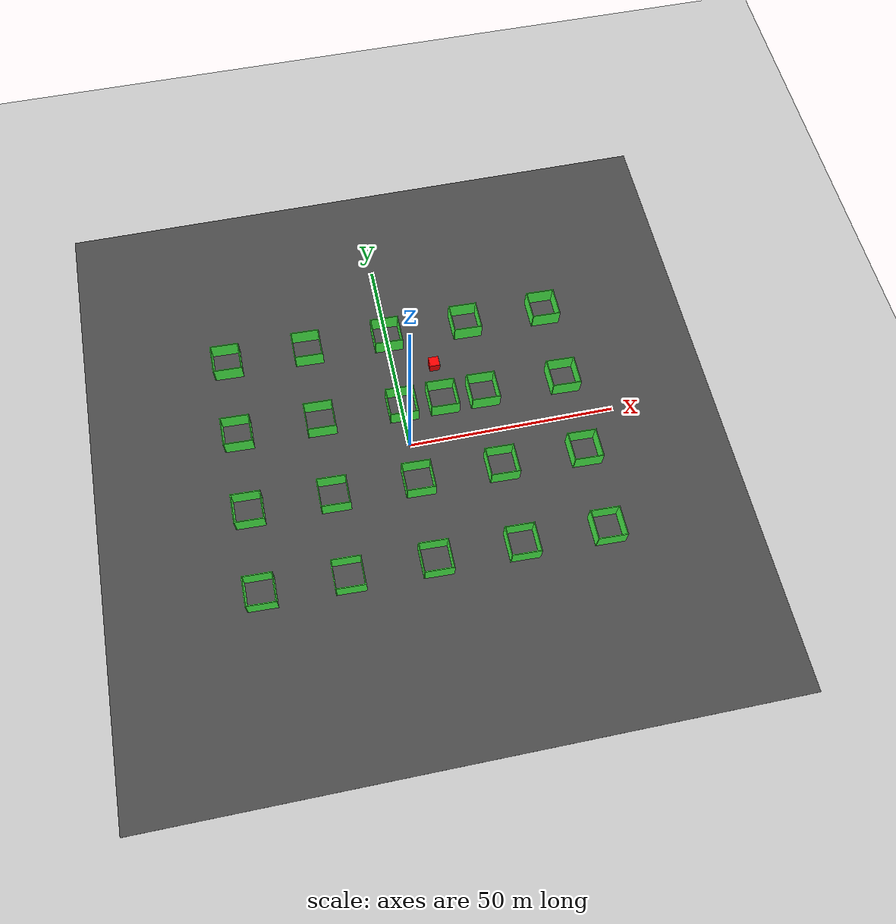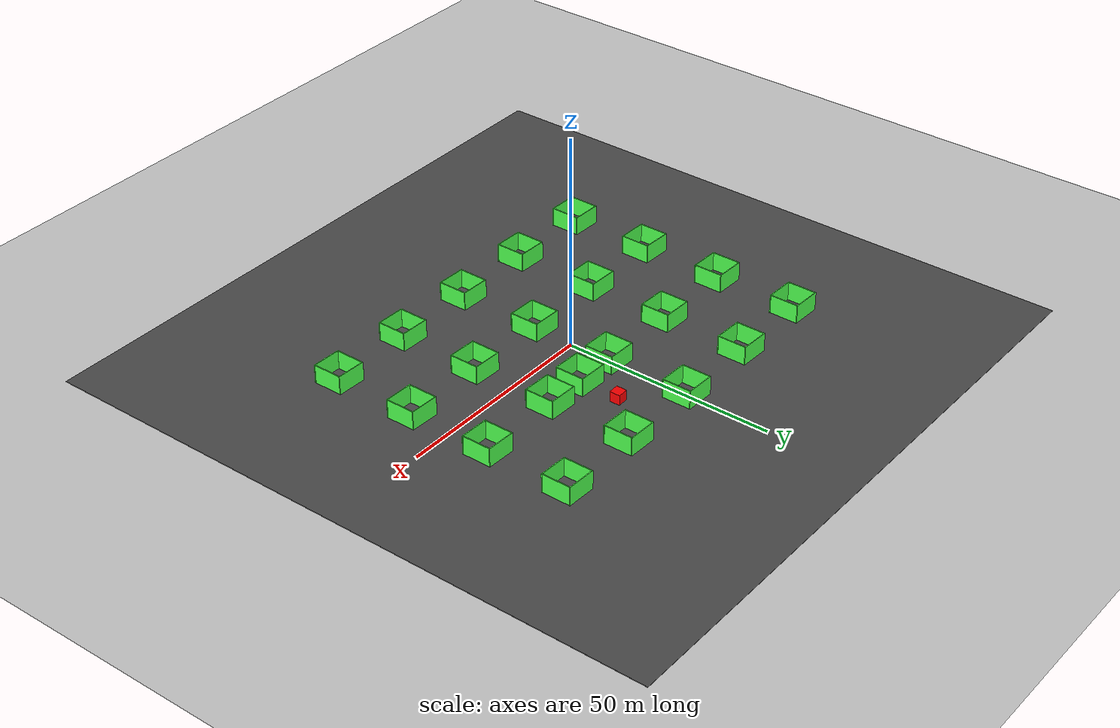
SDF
<?xml version="1.0"?>
<sdf version="1.9">
  <world name="default">
    <physics name="1ms" type="ignored">
      <max_step_size>0.001</max_step_size>
      <real_time_factor>1.0</real_time_factor>
      <real_time_update_rate>250</real_time_update_rate>
    </physics>

    <plugin filename="gz-sim-physics-system" name="gz::sim::systems::Physics"></plugin>
    <plugin filename="gz-sim-user-commands-system" name="gz::sim::systems::UserCommands"></plugin>
    <plugin filename="gz-sim-scene-broadcaster-system" name="gz::sim::systems::SceneBroadcaster"></plugin>

    <include>
      <uri>https://fuel.gazebosim.org/1.0/OpenRobotics/models/Ground Plane</uri>
    </include>

    <light type="directional" name="sun">
      <cast_shadows>true</cast_shadows>
      <pose>0 0 10 0 0 0</pose>
      <diffuse>0.8 0.8 0.8 1</diffuse>
      <specular>0.2 0.2 0.2 1</specular>
      <attenuation>
        <range>1000</range>
        <constant>0.9</constant>
        <linear>0.01</linear>
        <quadratic>0.001</quadratic>
      </attenuation>
      <direction>-0.5 0.1 -0.9</direction>
    </light>

    <model name='asphalt_plane'>
      <static>1</static>
      <link name='link'>
        <collision name='collision'>
          <geometry>
            <box>
              <size>150 150 0.1</size>
            </box>
          </geometry>
          <max_contacts>10</max_contacts>
          <surface>
            <contact>
              <ode/>
            </contact>
            <bounce/>
            <friction>
              <torsional>
                <ode/>
              </torsional>
              <ode/>
            </friction>
          </surface>
        </collision>
        <visual name='visual'>
          <cast_shadows>0</cast_shadows>
          <geometry>
            <box>
              <size>150 150 0.1</size>
            </box>
          </geometry>
          <material>
            <ambient>0.3 0.3 0.3 1</ambient>
            <diffuse>0.3 0.3 0.3 1</diffuse>
            <specular>0.1 0.1 0.1 1</specular>
          </material>
        </visual>
        <self_collide>0</self_collide>
        <enable_wind>0</enable_wind>
        <kinematic>0</kinematic>
      </link>
      <pose>0 0 0 0 -0 0</pose>
    </model>

    <!-- Manually placed walls instead of population (Gazebo Harmonic compatibility) -->
    <!-- Row 1 -->
    <model name='wall_0_0'>
      <pose>-40 -30 2.25 0 0 0</pose>
      <include>
        <uri>closed_green_wall</uri>
      </include>
      <static>true</static>
    </model>

    <model name='wall_0_1'>
      <pose>-20 -30 2.25 0 0 0</pose>
      <include>
        <uri>closed_green_wall</uri>
      </include>
      <static>true</static>
    </model>

    <model name='wall_0_2'>
      <pose>0 -30 2.25 0 0 0</pose>
      <include>
        <uri>closed_green_wall</uri>
      </include>
      <static>true</static>
    </model>

    <model name='wall_0_3'>
      <pose>20 -30 2.25 0 0 0</pose>
      <include>
        <uri>closed_green_wall</uri>
      </include>
      <static>true</static>
    </model>

    <model name='wall_0_4'>
      <pose>40 -30 2.25 0 0 0</pose>
      <include>
        <uri>closed_green_wall</uri>
      </include>
      <static>true</static>
    </model>

    <!-- Row 2 -->
    <model name='wall_1_0'>
      <pose>-40 -10 2.25 0 0 0</pose>
      <include>
        <uri>closed_green_wall</uri>
      </include>
      <static>true</static>
    </model>

    <model name='wall_1_1'>
      <pose>-20 -10 2.25 0 0 0</pose>
      <include>
        <uri>closed_green_wall</uri>
      </include>
      <static>true</static>
    </model>

    <model name='wall_1_2'>
      <pose>0 -10 2.25 0 0 0</pose>
      <include>
        <uri>closed_green_wall</uri>
      </include>
      <static>true</static>
    </model>

    <model name='wall_1_3'>
      <pose>20 -10 2.25 0 0 0</pose>
      <include>
        <uri>closed_green_wall</uri>
      </include>
      <static>true</static>
    </model>

    <model name='wall_1_4'>
      <pose>40 -10 2.25 0 0 0</pose>
      <include>
        <uri>closed_green_wall</uri>
      </include>
      <static>true</static>
    </model>

    <!-- Row 3 -->
    <model name='wall_2_0'>
      <pose>-40 10 2.25 0 0 0</pose>
      <include>
        <uri>closed_green_wall</uri>
      </include>
      <static>true</static>
    </model>

    <model name='wall_2_1'>
      <pose>-20 10 2.25 0 0 0</pose>
      <include>
        <uri>closed_green_wall</uri>
      </include>
      <static>true</static>
    </model>

    <model name='wall_2_2'>
      <pose>0 10 2.25 0 0 0</pose>
      <include>
        <uri>closed_green_wall</uri>
      </include>
      <static>true</static>
    </model>

    <model name='wall_2_X'>
      <pose>10 10 2.25 0 0 0</pose>
      <include>
        <uri>closed_green_wall</uri>
      </include>
      <static>true</static>
    </model>

    <model name='wall_2_3'>
      <pose>20 10 2.25 0 0 0</pose>
      <include>
        <uri>closed_green_wall</uri>
      </include>
      <static>true</static>
    </model>

    <model name='wall_2_4'>
      <pose>40 10 2.25 0 0 0</pose>
      <include>
        <uri>closed_green_wall</uri>
      </include>
      <static>true</static>
    </model>

    <!-- Row 4 -->
    <model name='wall_3_0'>
      <pose>-40 30 2.25 0 0 0</pose>
      <include>
        <uri>closed_green_wall</uri>
      </include>
      <static>true</static>
    </model>

    <model name='wall_3_1'>
      <pose>-20 30 2.25 0 0 0</pose>
      <include>
        <uri>closed_green_wall</uri>
      </include>
      <static>true</static>
    </model>

    <model name='wall_3_2'>
      <pose>0 30 2.25 0 0 0</pose>
      <include>
        <uri>closed_green_wall</uri>
      </include>
      <static>true</static>
    </model>

    <model name='wall_3_3'>
      <pose>20 30 2.25 0 0 0</pose>
      <include>
        <uri>closed_green_wall</uri>
      </include>
      <static>true</static>
    </model>

    <model name='wall_3_4'>
      <pose>40 30 2.25 0 0 0</pose>
      <include>
        <uri>closed_green_wall</uri>
      </include>
      <static>true</static>
    </model>

    <model name='box1'>
      <pose>10 20 1.25 0 0 0</pose> <!-- Bottom box positioned at half its height -->

      <link name='box1'>
        <visual name='visual'>
          <geometry>
            <box>
              <size>2.50 2.50 2.50</size>
            </box>
          </geometry>
          <material>
            <ambient>1 0 0 1</ambient>
            <diffuse>1 0 0 1</diffuse>
            <specular>1 0 0 1</specular>
          </material>
        </visual>
        <collision name='collision'>
          <geometry>
            <box>
              <size>2.50 2.50 2.50</size>
            </box>
          </geometry>
        </collision>
        <inertial>
          <mass>100.0</mass>
          <inertia>
            <ixx>266.67</ixx>
            <ixy>0</ixy>
            <ixz>0</ixz>
            <iyy>266.67</iyy>
            <iyz>0</iyz>
            <izz>266.67</izz>
          </inertia>
        </inertial>
      </link>
    </model>

    <gui fullscreen='0'>
      <camera name='user_camera'>
        <pose>0 0 80 0 1.57 0</pose>
        <view_controller>orbit</view_controller>
        <projection_type>perspective</projection_type>
      </camera>
    </gui>

  </world>
</sdf>

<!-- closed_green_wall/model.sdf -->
<sdf version='1.9'>
  <model name='closed_green_wall'>
    <link name='link_0'>
      <inertial>
        <mass>1</mass>
        <inertia>
          <ixx>0.166667</ixx>
          <ixy>0</ixy>
          <ixz>0</ixz>
          <iyy>0.166667</iyy>
          <iyz>0</iyz>
          <izz>0.166667</izz>
        </inertia>
        <pose>0 0 0 0 0 0</pose>
      </inertial>
      <pose>3.37098 -0.107634 0 0 0 0</pose>
      <gravity>1</gravity>
      <self_collide>0</self_collide>
      <kinematic>0</kinematic>
      <enable_wind>0</enable_wind>
      <visual name='visual'>
        <pose>0 0 0 0 0 0</pose>
        <geometry>
          <box>
            <size>0.2 7 4.5</size>
          </box>
        </geometry>
        <material>
          <ambient>0.3 1.0 0.3 1</ambient>
          <diffuse>0.3 1.0 0.3 1</diffuse>
          <specular>0.01 0.01 0.01 1</specular>
          <emissive>0 0 0 1</emissive>
        </material>
        <transparency>0</transparency>
        <cast_shadows>1</cast_shadows>
      </visual>
      <collision name='collision'>
        <laser_retro>0</laser_retro>
        <max_contacts>10</max_contacts>
        <pose>0 0 0 0 0 0</pose>
        <geometry>
          <box>
            <size>0.2 7 4.5</size>
          </box>
        </geometry>
        <surface>
          <friction>
            <ode>
              <mu>1</mu>
              <mu2>1</mu2>
              <fdir1>0 0 0</fdir1>
              <slip1>0</slip1>
              <slip2>0</slip2>
            </ode>
            <torsional>
              <coefficient>1</coefficient>
              <patch_radius>0</patch_radius>
              <surface_radius>0</surface_radius>
              <use_patch_radius>1</use_patch_radius>
              <ode>
                <slip>0</slip>
              </ode>
            </torsional>
          </friction>
          <bounce>
            <restitution_coefficient>0</restitution_coefficient>
            <threshold>1e+06</threshold>
          </bounce>
          <contact>
            <collide_without_contact>0</collide_without_contact>
            <collide_without_contact_bitmask>1</collide_without_contact_bitmask>
            <collide_bitmask>1</collide_bitmask>
            <ode>
              <soft_cfm>0</soft_cfm>
              <soft_erp>0.2</soft_erp>
              <kp>1e+13</kp>
              <kd>1</kd>
              <max_vel>0.01</max_vel>
              <min_depth>0</min_depth>
            </ode>
            <bullet>
              <split_impulse>1</split_impulse>
              <split_impulse_penetration_threshold>-0.01</split_impulse_penetration_threshold>
              <soft_cfm>0</soft_cfm>
              <soft_erp>0.2</soft_erp>
              <kp>1e+13</kp>
              <kd>1</kd>
            </bullet>
          </contact>
        </surface>
      </collision>
    </link>
    <link name='link_0_clone'>
      <inertial>
        <mass>1</mass>
        <inertia>
          <ixx>0.166667</ixx>
          <ixy>0</ixy>
          <ixz>0</ixz>
          <iyy>0.166667</iyy>
          <iyz>0</iyz>
          <izz>0.166667</izz>
        </inertia>
        <pose>0 0 0 0 0 0</pose>
      </inertial>
      <pose>0.024232 -3.42805 0 0 0 -1.59986</pose>
      <gravity>1</gravity>
      <self_collide>0</self_collide>
      <kinematic>0</kinematic>
      <enable_wind>0</enable_wind>
      <visual name='visual'>
        <pose>0 0 0 0 0 0</pose>
        <geometry>
          <box>
            <size>0.2 7 4.5</size>
          </box>
        </geometry>
        <material>
          <ambient>0.3 1.0 0.3 1</ambient>
          <diffuse>0.3 1.0 0.3 1</diffuse>
          <specular>0.01 0.01 0.01 1</specular>
          <emissive>0 0 0 1</emissive>
        </material>
        <transparency>0</transparency>
        <cast_shadows>1</cast_shadows>
      </visual>
      <collision name='collision'>
        <laser_retro>0</laser_retro>
        <max_contacts>10</max_contacts>
        <pose>0 0 0 0 0 0</pose>
        <geometry>
          <box>
            <size>0.2 7 4.5</size>
          </box>
        </geometry>
        <surface>
          <friction>
            <ode>
              <mu>1</mu>
              <mu2>1</mu2>
              <fdir1>0 0 0</fdir1>
              <slip1>0</slip1>
              <slip2>0</slip2>
            </ode>
            <torsional>
              <coefficient>1</coefficient>
              <patch_radius>0</patch_radius>
              <surface_radius>0</surface_radius>
              <use_patch_radius>1</use_patch_radius>
              <ode>
                <slip>0</slip>
              </ode>
            </torsional>
          </friction>
          <bounce>
            <restitution_coefficient>0</restitution_coefficient>
            <threshold>1e+06</threshold>
          </bounce>
          <contact>
            <collide_without_contact>0</collide_without_contact>
            <collide_without_contact_bitmask>1</collide_without_contact_bitmask>
            <collide_bitmask>1</collide_bitmask>
            <ode>
              <soft_cfm>0</soft_cfm>
              <soft_erp>0.2</soft_erp>
              <kp>1e+13</kp>
              <kd>1</kd>
              <max_vel>0.01</max_vel>
              <min_depth>0</min_depth>
            </ode>
            <bullet>
              <split_impulse>1</split_impulse>
              <split_impulse_penetration_threshold>-0.01</split_impulse_penetration_threshold>
              <soft_cfm>0</soft_cfm>
              <soft_erp>0.2</soft_erp>
              <kp>1e+13</kp>
              <kd>1</kd>
            </bullet>
          </contact>
        </surface>
      </collision>
    </link>
    <link name='link_0_clone_0'>
      <inertial>
        <mass>1</mass>
        <inertia>
          <ixx>0.166667</ixx>
          <ixy>0</ixy>
          <ixz>0</ixz>
          <iyy>0.166667</iyy>
          <iyz>0</iyz>
          <izz>0.166667</izz>
        </inertia>
        <pose>0 0 0 0 0 0</pose>
      </inertial>
      <pose>-3.40001 0.065208 0 0 0 0</pose>
      <gravity>1</gravity>
      <self_collide>0</self_collide>
      <kinematic>0</kinematic>
      <enable_wind>0</enable_wind>
      <visual name='visual'>
        <pose>0 0 0 0 0 0</pose>
        <geometry>
          <box>
            <size>0.2 7 4.5</size>
          </box>
        </geometry>
        <material>
          <ambient>0.3 1.0 0.3 1</ambient>
          <diffuse>0.3 1.0 0.3 1</diffuse>
          <specular>0.01 0.01 0.01 1</specular>
          <emissive>0 0 0 1</emissive>
        </material>
        <transparency>0</transparency>
        <cast_shadows>1</cast_shadows>
      </visual>
      <collision name='collision'>
        <laser_retro>0</laser_retro>
        <max_contacts>10</max_contacts>
        <pose>0 0 0 0 0 0</pose>
        <geometry>
          <box>
            <size>0.2 7 4.5</size>
          </box>
        </geometry>
        <surface>
          <friction>
            <ode>
              <mu>1</mu>
              <mu2>1</mu2>
              <fdir1>0 0 0</fdir1>
              <slip1>0</slip1>
              <slip2>0</slip2>
            </ode>
            <torsional>
              <coefficient>1</coefficient>
              <patch_radius>0</patch_radius>
              <surface_radius>0</surface_radius>
              <use_patch_radius>1</use_patch_radius>
              <ode>
                <slip>0</slip>
              </ode>
            </torsional>
          </friction>
          <bounce>
            <restitution_coefficient>0</restitution_coefficient>
            <threshold>1e+06</threshold>
          </bounce>
          <contact>
            <collide_without_contact>0</collide_without_contact>
            <collide_without_contact_bitmask>1</collide_without_contact_bitmask>
            <collide_bitmask>1</collide_bitmask>
            <ode>
              <soft_cfm>0</soft_cfm>
              <soft_erp>0.2</soft_erp>
              <kp>1e+13</kp>
              <kd>1</kd>
              <max_vel>0.01</max_vel>
              <min_depth>0</min_depth>
            </ode>
            <bullet>
              <split_impulse>1</split_impulse>
              <split_impulse_penetration_threshold>-0.01</split_impulse_penetration_threshold>
              <soft_cfm>0</soft_cfm>
              <soft_erp>0.2</soft_erp>
              <kp>1e+13</kp>
              <kd>1</kd>
            </bullet>
          </contact>
        </surface>
      </collision>
    </link>
    <link name='link_0_clone_clone'>
      <inertial>
        <mass>1</mass>
        <inertia>
          <ixx>0.166667</ixx>
          <ixy>0</ixy>
          <ixz>0</ixz>
          <iyy>0.166667</iyy>
          <iyz>0</iyz>
          <izz>0.166667</izz>
        </inertia>
        <pose>0 0 0 0 0 0</pose>
      </inertial>
      <pose>0.004806 3.47046 0 0 0 -1.59986</pose>
      <gravity>1</gravity>
      <self_collide>0</self_collide>
      <kinematic>0</kinematic>
      <enable_wind>0</enable_wind>
      <visual name='visual'>
        <pose>0 0 0 0 0 0</pose>
        <geometry>
          <box>
            <size>0.2 7 4.5</size>
          </box>
        </geometry>
        <material>
          <ambient>0.3 1.0 0.3 1</ambient>
          <diffuse>0.3 1.0 0.3 1</diffuse>
          <specular>0.01 0.01 0.01 1</specular>
          <emissive>0 0 0 1</emissive>
        </material>
        <transparency>0</transparency>
        <cast_shadows>1</cast_shadows>
      </visual>
      <collision name='collision'>
        <laser_retro>0</laser_retro>
        <max_contacts>10</max_contacts>
        <pose>0 0 0 0 0 0</pose>
        <geometry>
          <box>
            <size>0.2 7 4.5</size>
          </box>
        </geometry>
        <surface>
          <friction>
            <ode>
              <mu>1</mu>
              <mu2>1</mu2>
              <fdir1>0 0 0</fdir1>
              <slip1>0</slip1>
              <slip2>0</slip2>
            </ode>
            <torsional>
              <coefficient>1</coefficient>
              <patch_radius>0</patch_radius>
              <surface_radius>0</surface_radius>
              <use_patch_radius>1</use_patch_radius>
              <ode>
                <slip>0</slip>
              </ode>
            </torsional>
          </friction>
          <bounce>
            <restitution_coefficient>0</restitution_coefficient>
            <threshold>1e+06</threshold>
          </bounce>
          <contact>
            <collide_without_contact>0</collide_without_contact>
            <collide_without_contact_bitmask>1</collide_without_contact_bitmask>
            <collide_bitmask>1</collide_bitmask>
            <ode>
              <soft_cfm>0</soft_cfm>
              <soft_erp>0.2</soft_erp>
              <kp>1e+13</kp>
              <kd>1</kd>
              <max_vel>0.01</max_vel>
              <min_depth>0</min_depth>
            </ode>
            <bullet>
              <split_impulse>1</split_impulse>
              <split_impulse_penetration_threshold>-0.01</split_impulse_penetration_threshold>
              <soft_cfm>0</soft_cfm>
              <soft_erp>0.2</soft_erp>
              <kp>1e+13</kp>
              <kd>1</kd>
            </bullet>
          </contact>
        </surface>
      </collision>
    </link>
    <static>1</static>
    <allow_auto_disable>1</allow_auto_disable>
  </model>
</sdf>
